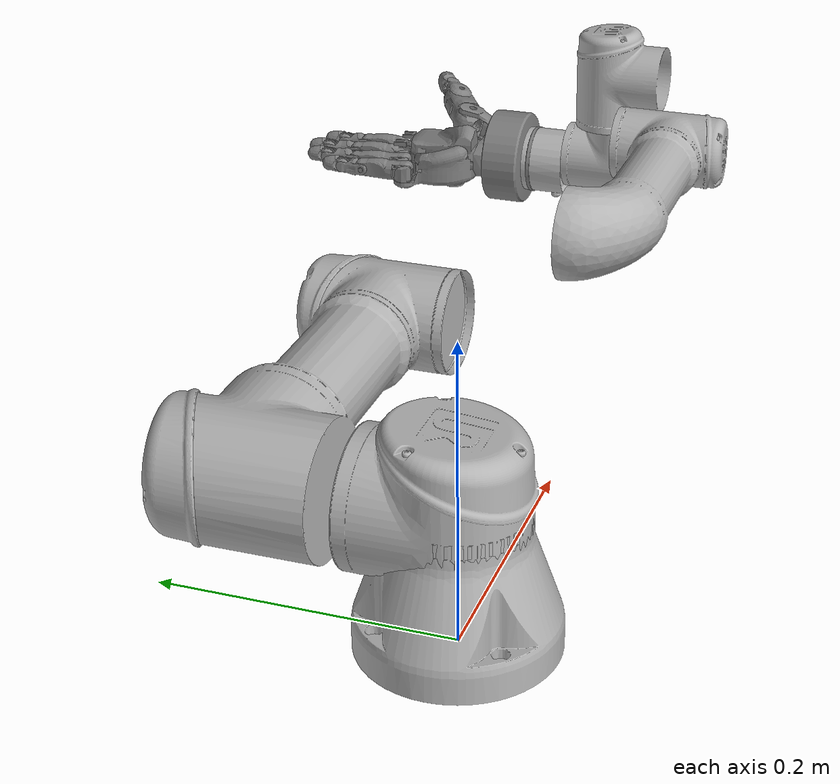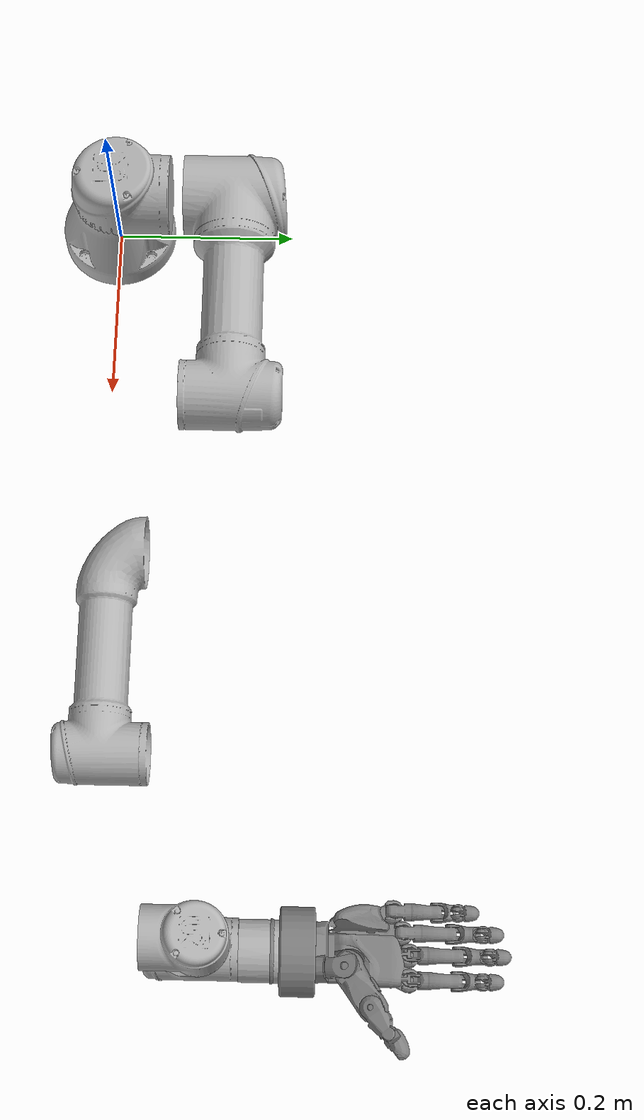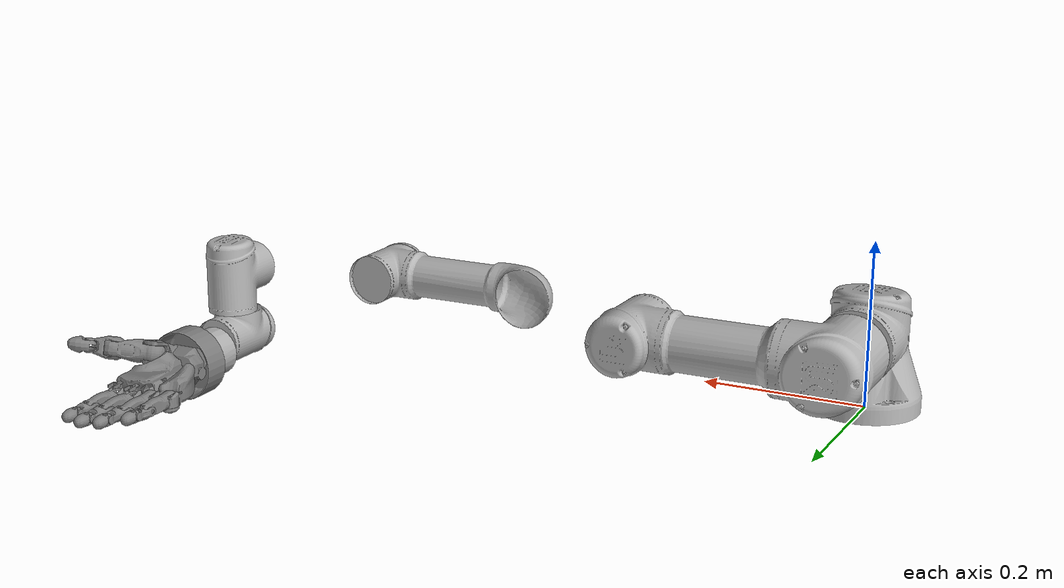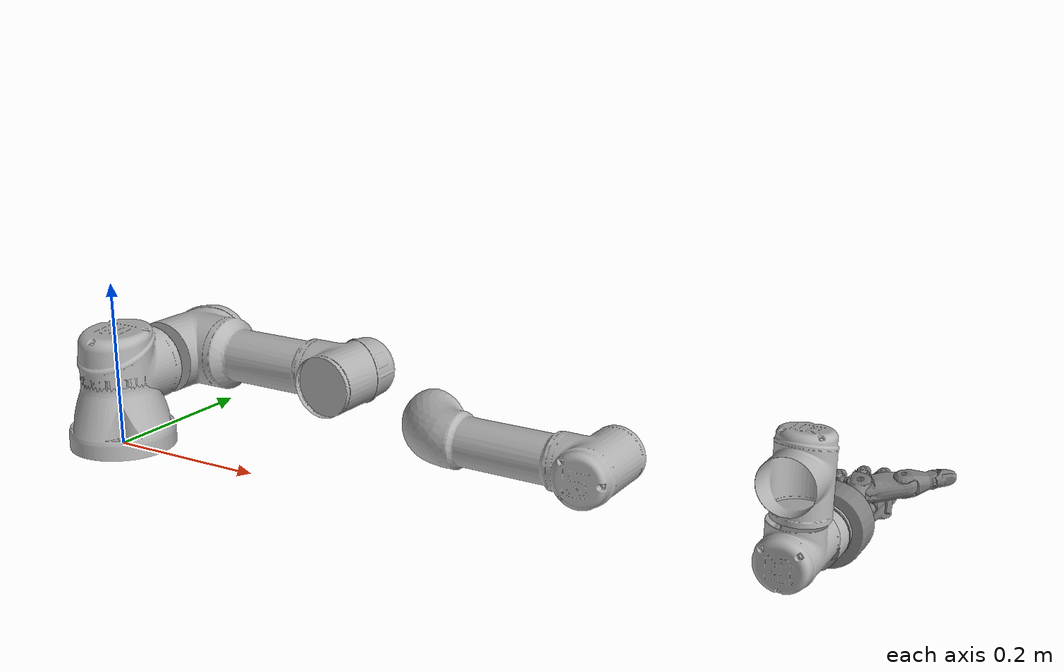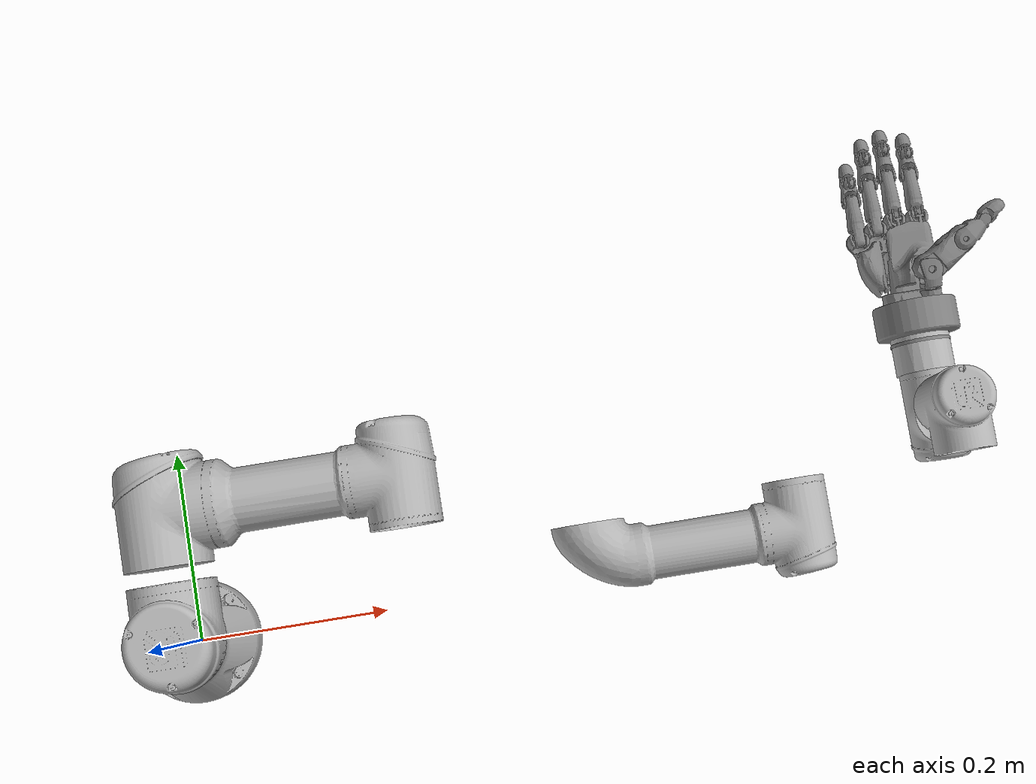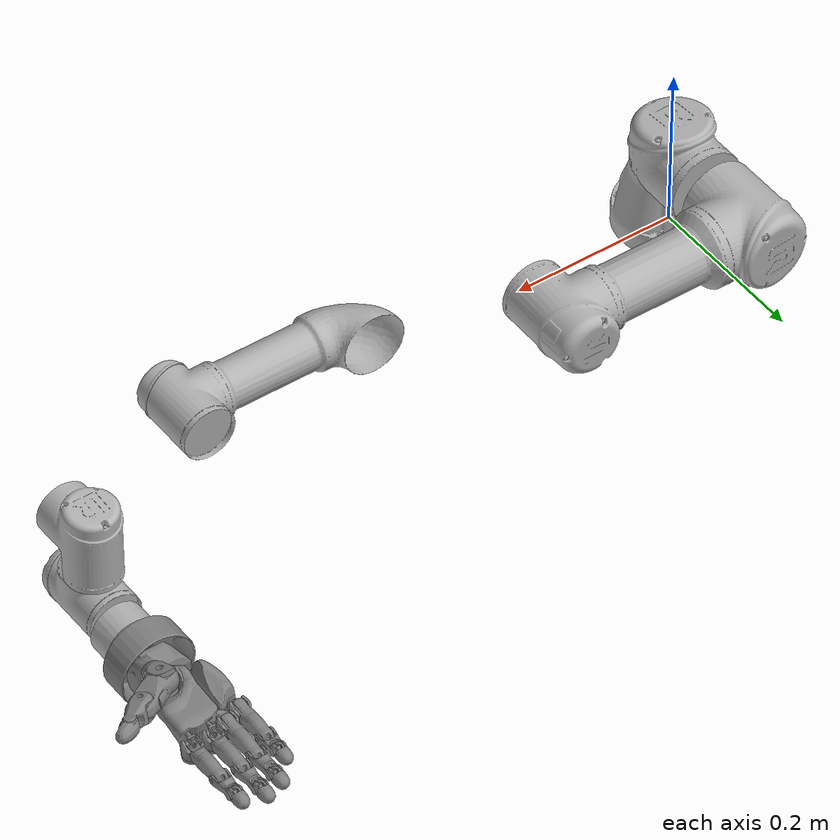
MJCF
<mujoco model="svh">
  <compiler angle="radian" meshdir="/home/francisco/catkin_ws/src/mujoco_ur5_svh_coupled/meshes/"/>
  <size njmax="500" nconmax="100"/>
  <default/>
  <asset>
    <mesh name="base" file="base.stl"/>
    <mesh name="shoulder" file="shoulder.stl"/>
    <mesh name="upperarm" file="upperarm.stl"/>
    <mesh name="forearm" file="forearm.stl"/>
    <mesh name="wrist1" file="wrist1.stl"/>
    <mesh name="wrist2" file="wrist2.stl"/>
    <mesh name="wrist3" file="wrist3.stl"/>
    <mesh name="base10" file="base10.stl"/>
    <mesh name="h10" file="h10.stl"/>
    <mesh name="h11" file="h11.stl"/>
    <mesh name="d10" file="d10.stl"/>
    <mesh name="d11" file="d11.stl"/>
    <mesh name="d12" file="d12.stl"/>
    <mesh name="d13" file="d13.stl"/>
    <mesh name="f10" file="f10.stl"/>
    <mesh name="f11" file="f11.stl"/>
    <mesh name="f12" file="f12.stl"/>
    <mesh name="f13" file="f13.stl"/>
    <mesh name="f20" file="f20.stl"/>
    <mesh name="f21" file="f21.stl"/>
    <mesh name="f22" file="f22.stl"/>
    <mesh name="f23" file="f23.stl"/>
    <mesh name="f30" file="f30.stl"/>
    <mesh name="f31" file="f31.stl"/>
    <mesh name="f32" file="f32.stl"/>
    <mesh name="f33" file="f33.stl"/>
    <mesh name="f40" file="f40.stl"/>
    <mesh name="f41" file="f41.stl"/>
    <mesh name="f42" file="f42.stl"/>
    <mesh name="f43" file="f43.stl"/>
  </asset>
  <worldbody>
    <geom type="mesh" contype="0" conaffinity="0" group="1" density="0" rgba="0.7 0.7 0.7 1" mesh="base"/>
    <geom type="mesh" rgba="0.7 0.7 0.7 1" mesh="base"/>
    <body name="shoulder_link" pos="0 0 0.089159">
      <inertial pos="0 0 0" mass="3.7" diaginertia="0.0102675 0.0102675 0.00666"/>
      <joint name="shoulder_pan_joint" pos="0 0 0" axis="0 0 1" limited="true" range="-3.14159 3.14159"/>
      <geom type="mesh" contype="0" conaffinity="0" group="1" density="0" rgba="0.7 0.7 0.7 1" mesh="shoulder"/>
      <geom type="mesh" rgba="0.7 0.7 0.7 1" mesh="shoulder"/>
      <body name="upper_arm_link" pos="0 0.13585 0" quat="0.707107 0 0.707107 0">
        <inertial pos="0 0 0.28" mass="8.393" diaginertia="0.226891 0.226891 0.0151074"/>
        <joint name="shoulder_lift_joint" pos="0 0 0" axis="0 1 0" limited="true" range="-3.14159 3.14159"/>
        <geom type="mesh" contype="0" conaffinity="0" group="1" density="0" rgba="0.7 0.7 0.7 1" mesh="upperarm"/>
        <geom type="mesh" rgba="0.7 0.7 0.7 1" mesh="upperarm"/>
        <body name="forearm_link" pos="0 -0.1197 0.425">
          <inertial pos="0 0 0.196125" mass="2.275" diaginertia="0.0312168 0.0312168 0.004095"/>
          <joint name="elbow_joint" pos="0 0 0" axis="0 1 0" limited="true" range="-3.14159 3.14159"/>
          <geom type="mesh" contype="0" conaffinity="0" group="1" density="0" rgba="0.7 0.7 0.7 1" mesh="forearm"/>
          <geom type="mesh" rgba="0.7 0.7 0.7 1" mesh="forearm"/>
          <body name="wrist_1_link" pos="0 0 0.39225" quat="0.707107 0 0.707107 0">
            <inertial pos="0 0.093 0" mass="1.219" diaginertia="0.0025599 0.0025599 0.0021942"/>
            <joint name="wrist_1_joint" pos="0 0 0" axis="0 1 0" limited="true" range="-3.14159 3.14159"/>
            <geom type="mesh" contype="0" conaffinity="0" group="1" density="0" rgba="0.7 0.7 0.7 1" mesh="wrist1"/>
            <geom type="mesh" rgba="0.7 0.7 0.7 1" mesh="wrist1"/>
            <body name="wrist_2_link" pos="0 0.093 0">
              <inertial pos="0 0 0.09465" mass="1.219" diaginertia="0.0025599 0.0025599 0.0021942"/>
              <joint name="wrist_2_joint" pos="0 0 0" axis="0 0 1" limited="true" range="-3.14159 3.14159"/>
              <geom type="mesh" contype="0" conaffinity="0" group="1" density="0" rgba="0.7 0.7 0.7 1" mesh="wrist2"/>
              <geom type="mesh" rgba="0.7 0.7 0.7 1" mesh="wrist2"/>
              <body name="wrist_3_link" pos="0 0 0.09465">
                <inertial pos="0 0.0813708 0.00263761" quat="0.656611 0.754229 0 0" mass="0.2489" diaginertia="0.6004 0.600398 0.600134"/>
                <joint name="wrist_3_joint" pos="0 0 0" axis="0 1 0" limited="true" range="-3.14159 3.14159"/>
                <geom type="mesh" contype="0" conaffinity="0" group="1" density="0" rgba="0.7 0.7 0.7 1" mesh="wrist3"/>
                <geom type="mesh" rgba="0.7 0.7 0.7 1" mesh="wrist3"/>
                <geom size="0.005 0.005 0.005" pos="0 0.0723 0" quat="0.707107 0 0 0.707107" type="box"/>
                <geom pos="0 0.0823 0" quat="0.707107 -0.707107 0 0" type="mesh" contype="0" conaffinity="0" group="1" density="0" mesh="base10"/>
                <geom pos="0 0.0823 0" quat="0.707107 -0.707107 0 0" type="mesh" mesh="base10"/>
                <geom pos="0 0.1143 0" quat="0.707107 -0.707107 0 0" type="mesh" contype="0" conaffinity="0" group="1" density="0" mesh="h10"/>
                <geom pos="0 0.1143 0" quat="0.707107 -0.707107 0 0" type="mesh" mesh="h10"/>
                <geom pos="-1.27248e-06 0.224301 0.02634" quat="0.707107 -6.81133e-05 0 0.707107" type="mesh" contype="0" conaffinity="0" group="1" density="0" mesh="f20"/>
                <geom pos="-1.27248e-06 0.224301 0.02634" quat="0.707107 -6.81133e-05 0 0.707107" type="mesh" mesh="f20"/>
                <body name="right_hand_z" pos="-0.0169 0.1143 -0.01313" quat="0.430402 -0.560942 0.561029 0.430516">
                  <inertial pos="0 0 0.02298" mass="0.02" diaginertia="0.200011 0.200011 0.2"/>
                  <joint name="right_hand_Thumb_Opposition" pos="0 0 0" axis="0 0 -1" limited="true" range="0 0.9879" damping="50.5" frictionloss="1"/>
                  <geom pos="0 0 0.02442" type="mesh" contype="0" conaffinity="0" group="1" density="0" mesh="d10"/>
                  <geom pos="0 0 0.02442" type="mesh" mesh="d10"/>
                  <body name="right_hand_a" pos="0 0 0.04596" quat="0.329798 0.625462 0.329771 0.625525">
                    <inertial pos="0 0 0" mass="0.078" diaginertia="0.149822 0.115536 0.115536"/>
                    <joint name="right_hand_Thumb_Flexion" pos="0 0 0" axis="0 0 1" limited="true" range="0 0.9704" damping="50.5" frictionloss="1"/>
                    <geom type="mesh" contype="0" conaffinity="0" group="1" density="0" mesh="d11"/>
                    <geom type="mesh" mesh="d11"/>
                    <body name="right_hand_b" pos="0.0485 0 0">
                      <inertial pos="0 0 0" mass="0.0325" diaginertia="0.062426 0.0373067 0.0373067"/>
                      <joint name="right_hand_j3" pos="0 0 0" axis="0 0 1" limited="true" range="0 0.98506" damping="50.5" frictionloss="1"/>
                      <geom type="mesh" contype="0" conaffinity="0" group="1" density="0" mesh="d12"/>
                      <geom type="mesh" mesh="d12"/>
                      <body name="right_hand_c" pos="0.03 0 0">
                        <inertial pos="0 0 0" mass="0.2" diaginertia="0.38416 0.208747 0.208747"/>
                        <joint name="right_hand_j4" pos="0 0 0" axis="0 0 1" limited="true" range="0 1.406" damping="50.5" frictionloss="1"/>
                        <geom type="mesh" contype="0" conaffinity="0" group="1" density="0" mesh="d13"/>
                        <geom type="mesh" mesh="d13"/>
                      </body>
                    </body>
                  </body>
                </body>
                <body name="right_hand_virtual_l" pos="-0.025 0.2243 0.01313" quat="0.707107 -6.81133e-05 0 0.707107">
                  <inertial pos="0 0 0" mass="0.01" diaginertia="0.1 0.1 0.1"/>
                  <joint name="right_hand_index_spread" pos="0 0 0" axis="0 0 1" limited="true" range="0 0.28833" damping="50.5" frictionloss="1"/>
                  <geom pos="0 0 0.01321" type="mesh" contype="0" conaffinity="0" group="1" density="0" mesh="f10"/>
                  <geom pos="0 0 0.01321" type="mesh" mesh="f10"/>
                  <body name="right_hand_l" pos="0 0 0" quat="0.707141 -0.707073 0 0">
                    <inertial pos="0 0 0" mass="0.2" diaginertia="0.38416 0.34208 0.34208"/>
                    <joint name="right_hand_Index_Finger_Proximal" pos="0 0 0" axis="0 0 1" limited="true" range="0 0.79849" damping="50.5" frictionloss="1"/>
                    <geom type="mesh" contype="0" conaffinity="0" group="1" density="0" mesh="f11"/>
                    <geom type="mesh" mesh="f11"/>
                    <body name="right_hand_p" pos="0.04804 0 0">
                      <inertial pos="0 0 0" mass="0.2" diaginertia="0.38416 0.258747 0.258747"/>
                      <joint name="right_hand_Index_Finger_Distal" pos="0 0 0" axis="0 0 1" limited="true" range="0 1.334" damping="50.5" frictionloss="1"/>
                      <geom type="mesh" contype="0" conaffinity="0" group="1" density="0" mesh="f12"/>
                      <geom type="mesh" mesh="f12"/>
                      <body name="right_hand_t" pos="0.026 0 0">
                        <inertial pos="0 0 0" mass="0.2" diaginertia="0.38416 0.22958 0.22958"/>
                        <joint name="right_hand_j14" pos="0 0 0" axis="0 0 1" limited="true" range="0 1.394" damping="50.5" frictionloss="1"/>
                        <geom type="mesh" contype="0" conaffinity="0" group="1" density="0" mesh="f13"/>
                        <geom type="mesh" mesh="f13"/>
                      </body>
                    </body>
                  </body>
                </body>
                <body name="right_hand_k" pos="0 0.2243 0.01313" quat="0.499976 -0.500024 -0.499976 0.500024">
                  <inertial pos="0 0 0" quat="0.5 0.5 0.5 0.5" mass="0.078" diaginertia="0.154536 0.154536 0.149822"/>
                  <joint name="right_hand_Middle_Finger_Proximal" pos="0 0 0" axis="0 0 1" limited="true" range="0 0.79849" damping="50.5" frictionloss="1"/>
                  <geom type="mesh" contype="0" conaffinity="0" group="1" density="0" mesh="f21"/>
                  <geom type="mesh" mesh="f21"/>
                  <body name="right_hand_o" pos="0.05004 0 0">
                    <inertial pos="0 0 0" mass="0.0325" diaginertia="0.062426 0.0420463 0.0420463"/>
                    <joint name="right_hand_Middle_Finger_Distal" pos="0 0 0" axis="0 0 1" limited="true" range="0 1.334" damping="50.5" frictionloss="1"/>
                    <geom type="mesh" contype="0" conaffinity="0" group="1" density="0" mesh="f22"/>
                    <geom type="mesh" mesh="f22"/>
                    <body name="right_hand_s" pos="0.032 0 0">
                      <inertial pos="0 0 0" mass="0.0195" diaginertia="0.0374556 0.022384 0.022384"/>
                      <joint name="right_hand_j15" pos="0 0 0" axis="0 0 1" limited="true" range="0 1.334" damping="50.5" frictionloss="1"/>
                      <geom type="mesh" contype="0" conaffinity="0" group="1" density="0" mesh="f23"/>
                      <geom type="mesh" mesh="f23"/>
                    </body>
                  </body>
                </body>
                <body name="right_hand_e2" pos="0.0184 0.1518 0.00713" quat="0.707107 -0.707107 0 0">
                  <inertial pos="0 -0.0048 0" quat="0.707107 0.707107 0 0" mass="0.05" diaginertia="0.5 0.5 0.5"/>
                  <joint name="right_hand_j5" pos="0 0 0" axis="0 0 1" limited="true" range="0 0.98786" damping="50.5" frictionloss="1"/>
                  <geom pos="-0.0007 0 -0.01002" type="mesh" contype="0" conaffinity="0" group="1" density="0" mesh="h11"/>
                  <geom pos="-0.0007 0 -0.01002" type="mesh" mesh="h11"/>
                  <body name="right_hand_virtual_i" pos="0.025355 -0.006 0.056" quat="0.500048 -0.5 -0.5 -0.499952">
                    <inertial pos="0 0 0" mass="0.01" diaginertia="0.1 0.1 0.1"/>
                    <joint name="right_hand_Finger_Spread" pos="0 0 0" axis="0 0 1" limited="true" range="0 0.5829" damping="50.5" frictionloss="1"/>
                    <geom pos="0 0 -0.01321" type="mesh" contype="0" conaffinity="0" group="1" density="0" mesh="f40"/>
                    <geom pos="0 0 -0.01321" type="mesh" mesh="f40"/>
                    <body name="right_hand_i" pos="0 0 0" quat="0.707141 0.707073 0 0">
                      <inertial pos="0 0 0" quat="0.5 0.5 0.5 0.5" mass="0.078" diaginertia="0.154536 0.154536 0.149822"/>
                      <joint name="right_hand_Pinky" pos="0 0 0" axis="0 0 1" limited="true" range="0 0.98175" damping="50.5" frictionloss="1"/>
                      <geom type="mesh" contype="0" conaffinity="0" group="1" density="0" mesh="f41"/>
                      <geom type="mesh" mesh="f41"/>
                      <body name="right_hand_m" pos="0.04454 0 0">
                        <inertial pos="0 0 0" mass="0.0325" diaginertia="0.062426 0.0420463 0.0420463"/>
                        <joint name="right_hand_j13" pos="0 0 0" axis="0 0 1" limited="true" range="0 1.334" damping="50.5" frictionloss="1"/>
                        <geom type="mesh" contype="0" conaffinity="0" group="1" density="0" mesh="f42"/>
                        <geom type="mesh" mesh="f42"/>
                        <body name="right_hand_q" pos="0.022 0 0">
                          <inertial pos="0 0 0" mass="0.0195" diaginertia="0.0374556 0.022384 0.022384"/>
                          <joint name="right_hand_j17" pos="0 0 0" axis="0 0 1" limited="true" range="0 1.3971" damping="50.5" frictionloss="1"/>
                          <geom type="mesh" contype="0" conaffinity="0" group="1" density="0" mesh="f43"/>
                          <geom type="mesh" mesh="f43"/>
                        </body>
                      </body>
                    </body>
                  </body>
                  <body name="right_hand_virtual_j" pos="0.003855 -0.006 0.0655" quat="0.500048 -0.5 -0.5 -0.499952">
                    <inertial pos="0 0 0" mass="0.01" diaginertia="0.1 0.1 0.1"/>
                    <joint name="right_hand_ring_spread" pos="0 0 0" axis="0 0 1" limited="true" range="0 0.28833" damping="50.5" frictionloss="1"/>
                    <geom pos="0 0 -0.01321" type="mesh" contype="0" conaffinity="0" group="1" density="0" mesh="f30"/>
                    <geom pos="0 0 -0.01321" type="mesh" mesh="f30"/>
                    <body name="right_hand_j" pos="0 0 0" quat="0.707141 0.707073 0 0">
                      <inertial pos="0 0 0" quat="0.5 0.5 0.5 0.5" mass="0.078" diaginertia="0.154536 0.154536 0.149822"/>
                      <joint name="right_hand_Ring_Finger" pos="0 0 0" axis="0 0 1" limited="true" range="0 0.98175" damping="50.5" frictionloss="1"/>
                      <geom type="mesh" contype="0" conaffinity="0" group="1" density="0" mesh="f31"/>
                      <geom type="mesh" mesh="f31"/>
                      <body name="right_hand_n" pos="0.05004 0 0">
                        <inertial pos="0 0 0" mass="0.0325" diaginertia="0.062426 0.0420463 0.0420463"/>
                        <joint name="right_hand_j12" pos="0 0 0" axis="0 0 1" limited="true" range="0 1.334" damping="50.5" frictionloss="1"/>
                        <geom type="mesh" contype="0" conaffinity="0" group="1" density="0" mesh="f32"/>
                        <geom type="mesh" mesh="f32"/>
                        <body name="right_hand_r" pos="0.032 0 0">
                          <inertial pos="0 0 0" mass="0.0195" diaginertia="0.0374556 0.022384 0.022384"/>
                          <joint name="right_hand_j16" pos="0 0 0" axis="0 0 1" limited="true" range="0 1.395" damping="50.5" frictionloss="1"/>
                          <geom type="mesh" contype="0" conaffinity="0" group="1" density="0" mesh="f33"/>
                          <geom type="mesh" mesh="f33"/>
                        </body>
                      </body>
                    </body>
                  </body>
                </body>
              </body>
            </body>
          </body>
        </body>
      </body>
    </body>
  </worldbody>
</mujoco>
